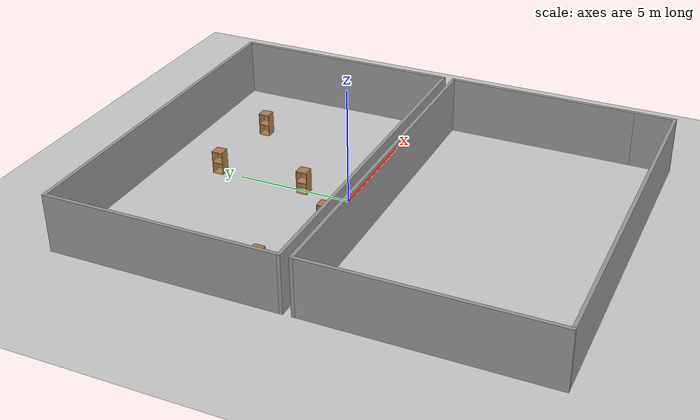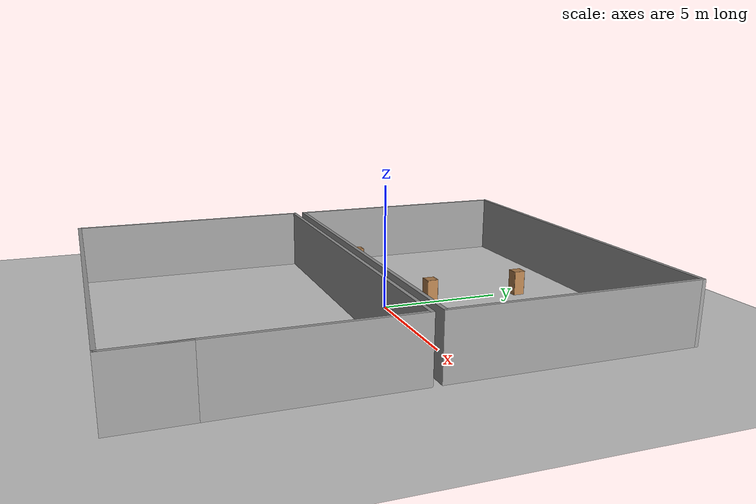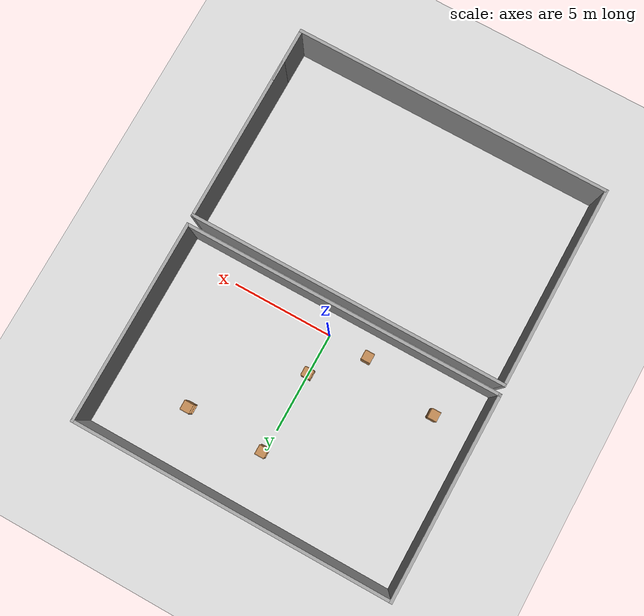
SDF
<sdf version="1.6">
 <world name="default">
  <light name="sun" type="directional">
   <pose>0 0 10 0 -0 0</pose>
   <diffuse>0.8 0.8 0.8 1</diffuse>
   <specular>0.1 0.1 0.1 1</specular>
   <attenuation>
    <range>1000</range>
    <constant>0.9</constant>
    <linear>0.01</linear>
    <quadratic>0.001</quadratic>
   </attenuation>
   <direction>-0.5 0.5 -1</direction>
  </light>
  <model name="ground_plane">
   <static>1</static>
   <link name="link">
    <collision name="collision">
     <geometry><plane><normal>0 0 1</normal><size>100 100</size></plane></geometry>
     <surface><friction><ode><mu>100</mu><mu2>50</mu2></ode></friction></surface>
    </collision>
    <visual name="visual">
     <cast_shadows>0</cast_shadows>
     <geometry><plane><normal>0 0 1</normal><size>100 100</size></plane></geometry>
     <material>
      <script><uri>file://media/materials/scripts/gazebo.material</uri><name>Gazebo/Grey</name></script>
     </material>
    </visual>
   </link>
  </model>
  <gravity>0 0 -9.8</gravity>
  <magnetic_field>6e-06 2.3e-05 -4.2e-05</magnetic_field>
  <atmosphere type="adiabatic"/>
  <physics name="default_physics" default="0" type="ode">
   <max_step_size>0.001</max_step_size>
   <real_time_factor>1</real_time_factor>
   <real_time_update_rate>1000</real_time_update_rate>
  </physics>
  <scene><ambient>0.4 0.4 0.4 1</ambient><background>0.7 0.7 0.7 1</background><shadows>1</shadows></scene>
  <spherical_coordinates>
   <surface_model>EARTH_WGS84</surface_model>
   <latitude_deg>0</latitude_deg>
   <longitude_deg>0</longitude_deg>
   <elevation>0</elevation>
   <heading_deg>0</heading_deg>
  </spherical_coordinates>
  <model name="two_rooms">
   <pose>-0.03807 -1.33544 0 0 -0 0</pose>
   <link name="Wall_14">
    <collision name="Wall_14_Collision">
     <geometry><box><size>15.75 0.15 2.5</size></box></geometry>
     <pose>0 0 1.25 0 -0 0</pose>
    </collision>
    <visual name="Wall_14_Visual">
     <pose>0 0 1.25 0 -0 0</pose>
     <geometry><box><size>15.75 0.15 2.5</size></box></geometry>
     <material>
      <script><uri>file://media/materials/scripts/gazebo.material</uri><name>Gazebo/Grey</name></script>
      <ambient>1 1 1 1</ambient>
     </material>
    </visual>
    <pose>0.008086 -0.237245 0 0 -0 0</pose>
   </link>
   <link name="Wall_15">
    <collision name="Wall_15_Collision">
     <geometry><box><size>8.25 0.15 2.5</size></box></geometry>
     <pose>0 0 1.25 0 -0 0</pose>
    </collision>
    <visual name="Wall_15_Visual">
     <pose>0 0 1.25 0 -0 0</pose>
     <geometry><box><size>8.25 0.15 2.5</size></box></geometry>
     <material>
      <script><uri>file://media/materials/scripts/gazebo.material</uri><name>Gazebo/Grey</name></script>
      <ambient>1 1 1 1</ambient>
     </material>
    </visual>
    <pose>7.80809 -4.28724 0 0 0 -1.5708</pose>
   </link>
   <link name="Wall_19">
    <collision name="Wall_19_Collision">
     <geometry><box><size>10 0.15 2.5</size></box></geometry>
     <pose>0 0 1.25 0 -0 0</pose>
    </collision>
    <visual name="Wall_19_Visual">
     <pose>0 0 1.25 0 -0 0</pose>
     <geometry><box><size>10 0.15 2.5</size></box></geometry>
     <material>
      <script><uri>file://media/materials/scripts/gazebo.material</uri><name>Gazebo/Grey</name></script>
      <ambient>1 1 1 1</ambient>
     </material>
    </visual>
    <pose>-7.80809 5.16225 0 0 -0 1.5708</pose>
   </link>
   <link name="Wall_24">
    <collision name="Wall_24_Collision">
     <geometry><box><size>15.75 0.15 2.5</size></box></geometry>
     <pose>0 0 1.25 0 -0 0</pose>
    </collision>
    <visual name="Wall_24_Visual">
     <pose>0 0 1.25 0 -0 0</pose>
     <geometry><box><size>15.75 0.15 2.5</size></box></geometry>
     <material>
      <script><uri>file://media/materials/scripts/gazebo.material</uri><name>Gazebo/Grey</name></script>
      <ambient>1 1 1 1</ambient>
     </material>
    </visual>
    <pose>-0.008085 10.0872 0 0 -0 0</pose>
   </link>
   <link name="Wall_27">
    <collision name="Wall_27_Collision">
     <geometry><box><size>10 0.15 2.5</size></box></geometry>
     <pose>0 0 1.25 0 -0 0</pose>
    </collision>
    <visual name="Wall_27_Visual">
     <pose>0 0 1.25 0 -0 0</pose>
     <geometry><box><size>10 0.15 2.5</size></box></geometry>
     <material>
      <script><uri>file://media/materials/scripts/gazebo.material</uri><name>Gazebo/Grey</name></script>
      <ambient>1 1 1 1</ambient>
     </material>
    </visual>
    <pose>-7.79191 -5.16224 0 0 0 -1.5708</pose>
   </link>
   <link name="Wall_28">
    <collision name="Wall_28_Collision">
     <geometry><box><size>15.75 0.15 2.5</size></box></geometry>
     <pose>0 0 1.25 0 -0 0</pose>
    </collision>
    <visual name="Wall_28_Visual">
     <pose>0 0 1.25 0 -0 0</pose>
     <geometry><box><size>15.75 0.15 2.5</size></box></geometry>
     <material>
      <script><uri>file://media/materials/scripts/gazebo.material</uri><name>Gazebo/Grey</name></script>
      <ambient>1 1 1 1</ambient>
     </material>
    </visual>
    <pose>0.008086 -10.0872 0 0 -0 0</pose>
   </link>
   <link name="Wall_29">
    <collision name="Wall_29_Collision">
     <geometry><box><size>2.75 0.15 2.5</size></box></geometry>
     <pose>0 0 1.25 0 -0 0</pose>
    </collision>
    <visual name="Wall_29_Visual">
     <pose>0 0 1.25 0 -0 0</pose>
     <geometry><box><size>2.75 0.15 2.5</size></box></geometry>
     <material>
      <script><uri>file://media/materials/scripts/gazebo.material</uri><name>Gazebo/Grey</name></script>
      <ambient>1 1 1 1</ambient>
     </material>
    </visual>
    <pose>7.80809 -8.78724 0 0 -0 1.5708</pose>
   </link>
   <link name="Wall_8">
    <collision name="Wall_8_Collision">
     <geometry><box><size>15.75 0.15 2.5</size></box></geometry>
     <pose>0 0 1.25 0 -0 0</pose>
    </collision>
    <visual name="Wall_8_Visual">
     <pose>0 0 1.25 0 -0 0</pose>
     <geometry><box><size>15.75 0.15 2.5</size></box></geometry>
     <material>
      <script><uri>file://media/materials/scripts/gazebo.material</uri><name>Gazebo/Grey</name></script>
      <ambient>1 1 1 1</ambient>
     </material>
    </visual>
    <pose>-0.008085 0.237244 0 0 -0 0</pose>
   </link>
   <link name="Wall_9">
    <collision name="Wall_9_Collision">
     <geometry><box><size>10 0.15 2.5</size></box></geometry>
     <pose>0 0 1.25 0 -0 0</pose>
    </collision>
    <visual name="Wall_9_Visual">
     <pose>0 0 1.25 0 -0 0</pose>
     <geometry><box><size>10 0.15 2.5</size></box></geometry>
     <material>
      <script><uri>file://media/materials/scripts/gazebo.material</uri><name>Gazebo/Grey</name></script>
      <ambient>1 1 1 1</ambient>
     </material>
    </visual>
    <pose>7.79192 5.16225 0 0 -0 1.5708</pose>
   </link>
   <static>1</static>
  </model>
  <model name="cabinet">
   <static>1</static>
   <link name="cabinet_bottom_plate">
    <inertial>
     <pose>0 0 -1 0 -0 0</pose>
     <inertia><ixx>2.05</ixx><ixy>0</ixy><ixz>0</ixz><iyy>2.05</iyy><iyz>0</iyz><izz>2.05</izz></inertia>
     <mass>25</mass>
    </inertial>
    <collision name="cabinet_bottom_plate_geom">
     <pose>0 0 0.01 0 -0 0</pose>
     <geometry><box><size>0.45 0.45 0.02</size></box></geometry>
    </collision>
    <visual name="cabinet_bottom_plate_geom_visual">
     <pose>0 0 0.01 0 -0 0</pose>
     <geometry><box><size>0.45 0.45 0.02</size></box></geometry>
     <material>
      <script><uri>file://media/materials/scripts/gazebo.material</uri><name>Gazebo/Wood</name></script>
     </material>
    </visual>
    <collision name="cabinet_bottom_plate_geom_cabinet_back_plate">
     <pose>0.235 0 0.51 0 -0 0</pose>
     <geometry><box><size>0.02 0.45 1.02</size></box></geometry>
    </collision>
    <visual name="cabinet_bottom_plate_geom_cabinet_back_plate_visual">
     <pose>0.235 0 0.51 0 -0 0</pose>
     <geometry><box><size>0.02 0.45 1.02</size></box></geometry>
     <material>
      <script><uri>file://media/materials/scripts/gazebo.material</uri><name>Gazebo/Wood</name></script>
     </material>
    </visual>
    <collision name="cabinet_bottom_plate_geom_cabinet_left_plate">
     <pose>0 0.235 0.51 0 -0 0</pose>
     <geometry><box><size>0.45 0.02 1.02</size></box></geometry>
    </collision>
    <visual name="cabinet_bottom_plate_geom_cabinet_left_plate_visual">
     <pose>0 0.235 0.51 0 -0 0</pose>
     <geometry><box><size>0.45 0.02 1.02</size></box></geometry>
     <material>
      <script><uri>file://media/materials/scripts/gazebo.material</uri><name>Gazebo/Wood</name></script>
     </material>
    </visual>
    <collision name="cabinet_bottom_plate_geom_cabinet_middle_plate">
     <pose>0 0 0.51 0 -0 0</pose>
     <geometry><box><size>0.45 0.45 0.02</size></box></geometry>
    </collision>
    <visual name="cabinet_bottom_plate_geom_cabinet_middle_plate_visual">
     <pose>0 0 0.51 0 -0 0</pose>
     <geometry><box><size>0.45 0.45 0.02</size></box></geometry>
     <material>
      <script><uri>file://media/materials/scripts/gazebo.material</uri><name>Gazebo/Wood</name></script>
     </material>
    </visual>
    <collision name="cabinet_bottom_plate_geom_cabinet_right_plate">
     <pose>0 -0.235 0.51 0 -0 0</pose>
     <geometry><box><size>0.45 0.02 1.02</size></box></geometry>
    </collision>
    <visual name="cabinet_bottom_plate_geom_cabinet_right_plate_visual">
     <pose>0 -0.235 0.51 0 -0 0</pose>
     <geometry><box><size>0.45 0.02 1.02</size></box></geometry>
     <material>
      <script><uri>file://media/materials/scripts/gazebo.material</uri><name>Gazebo/Wood</name></script>
     </material>
    </visual>
    <collision name="cabinet_bottom_plate_geom_cabinet_top_plate">
     <pose>0 0 1.01 0 -0 0</pose>
     <geometry><box><size>0.45 0.45 0.02</size></box></geometry>
    </collision>
    <visual name="cabinet_bottom_plate_geom_cabinet_top_plate_visual">
     <pose>0 0 1.01 0 -0 0</pose>
     <geometry><box><size>0.45 0.45 0.02</size></box></geometry>
     <material>
      <script><uri>file://media/materials/scripts/gazebo.material</uri><name>Gazebo/Wood</name></script>
     </material>
    </visual>
   </link>
   <pose>-5.89097 0.939873 0 0 -0 0</pose>
  </model>
  <model name="cabinet_0">
   <static>1</static>
   <link name="cabinet_bottom_plate">
    <inertial>
     <pose>0 0 -1 0 -0 0</pose>
     <inertia><ixx>2.05</ixx><ixy>0</ixy><ixz>0</ixz><iyy>2.05</iyy><iyz>0</iyz><izz>2.05</izz></inertia>
     <mass>25</mass>
    </inertial>
    <collision name="cabinet_bottom_plate_geom">
     <pose>0 0 0.01 0 -0 0</pose>
     <geometry><box><size>0.45 0.45 0.02</size></box></geometry>
    </collision>
    <visual name="cabinet_bottom_plate_geom_visual">
     <pose>0 0 0.01 0 -0 0</pose>
     <geometry><box><size>0.45 0.45 0.02</size></box></geometry>
     <material>
      <script><uri>file://media/materials/scripts/gazebo.material</uri><name>Gazebo/Wood</name></script>
     </material>
    </visual>
    <collision name="cabinet_bottom_plate_geom_cabinet_back_plate">
     <pose>0.235 0 0.51 0 -0 0</pose>
     <geometry><box><size>0.02 0.45 1.02</size></box></geometry>
    </collision>
    <visual name="cabinet_bottom_plate_geom_cabinet_back_plate_visual">
     <pose>0.235 0 0.51 0 -0 0</pose>
     <geometry><box><size>0.02 0.45 1.02</size></box></geometry>
     <material>
      <script><uri>file://media/materials/scripts/gazebo.material</uri><name>Gazebo/Wood</name></script>
     </material>
    </visual>
    <collision name="cabinet_bottom_plate_geom_cabinet_left_plate">
     <pose>0 0.235 0.51 0 -0 0</pose>
     <geometry><box><size>0.45 0.02 1.02</size></box></geometry>
    </collision>
    <visual name="cabinet_bottom_plate_geom_cabinet_left_plate_visual">
     <pose>0 0.235 0.51 0 -0 0</pose>
     <geometry><box><size>0.45 0.02 1.02</size></box></geometry>
     <material>
      <script><uri>file://media/materials/scripts/gazebo.material</uri><name>Gazebo/Wood</name></script>
     </material>
    </visual>
    <collision name="cabinet_bottom_plate_geom_cabinet_middle_plate">
     <pose>0 0 0.51 0 -0 0</pose>
     <geometry><box><size>0.45 0.45 0.02</size></box></geometry>
    </collision>
    <visual name="cabinet_bottom_plate_geom_cabinet_middle_plate_visual">
     <pose>0 0 0.51 0 -0 0</pose>
     <geometry><box><size>0.45 0.45 0.02</size></box></geometry>
     <material>
      <script><uri>file://media/materials/scripts/gazebo.material</uri><name>Gazebo/Wood</name></script>
     </material>
    </visual>
    <collision name="cabinet_bottom_plate_geom_cabinet_right_plate">
     <pose>0 -0.235 0.51 0 -0 0</pose>
     <geometry><box><size>0.45 0.02 1.02</size></box></geometry>
    </collision>
    <visual name="cabinet_bottom_plate_geom_cabinet_right_plate_visual">
     <pose>0 -0.235 0.51 0 -0 0</pose>
     <geometry><box><size>0.45 0.02 1.02</size></box></geometry>
     <material>
      <script><uri>file://media/materials/scripts/gazebo.material</uri><name>Gazebo/Wood</name></script>
     </material>
    </visual>
    <collision name="cabinet_bottom_plate_geom_cabinet_top_plate">
     <pose>0 0 1.01 0 -0 0</pose>
     <geometry><box><size>0.45 0.45 0.02</size></box></geometry>
    </collision>
    <visual name="cabinet_bottom_plate_geom_cabinet_top_plate_visual">
     <pose>0 0 1.01 0 -0 0</pose>
     <geometry><box><size>0.45 0.45 0.02</size></box></geometry>
     <material>
      <script><uri>file://media/materials/scripts/gazebo.material</uri><name>Gazebo/Wood</name></script>
     </material>
    </visual>
   </link>
   <pose>0.069768 6.06622 0 0 -0 0</pose>
  </model>
  <model name="cabinet_1">
   <static>1</static>
   <link name="cabinet_bottom_plate">
    <inertial>
     <pose>0 0 -1 0 -0 0</pose>
     <inertia><ixx>2.05</ixx><ixy>0</ixy><ixz>0</ixz><iyy>2.05</iyy><iyz>0</iyz><izz>2.05</izz></inertia>
     <mass>25</mass>
    </inertial>
    <collision name="cabinet_bottom_plate_geom">
     <pose>0 0 0.01 0 -0 0</pose>
     <geometry><box><size>0.45 0.45 0.02</size></box></geometry>
    </collision>
    <visual name="cabinet_bottom_plate_geom_visual">
     <pose>0 0 0.01 0 -0 0</pose>
     <geometry><box><size>0.45 0.45 0.02</size></box></geometry>
     <material>
      <script><uri>file://media/materials/scripts/gazebo.material</uri><name>Gazebo/Wood</name></script>
     </material>
    </visual>
    <collision name="cabinet_bottom_plate_geom_cabinet_back_plate">
     <pose>0.235 0 0.51 0 -0 0</pose>
     <geometry><box><size>0.02 0.45 1.02</size></box></geometry>
    </collision>
    <visual name="cabinet_bottom_plate_geom_cabinet_back_plate_visual">
     <pose>0.235 0 0.51 0 -0 0</pose>
     <geometry><box><size>0.02 0.45 1.02</size></box></geometry>
     <material>
      <script><uri>file://media/materials/scripts/gazebo.material</uri><name>Gazebo/Wood</name></script>
     </material>
    </visual>
    <collision name="cabinet_bottom_plate_geom_cabinet_left_plate">
     <pose>0 0.235 0.51 0 -0 0</pose>
     <geometry><box><size>0.45 0.02 1.02</size></box></geometry>
    </collision>
    <visual name="cabinet_bottom_plate_geom_cabinet_left_plate_visual">
     <pose>0 0.235 0.51 0 -0 0</pose>
     <geometry><box><size>0.45 0.02 1.02</size></box></geometry>
     <material>
      <script><uri>file://media/materials/scripts/gazebo.material</uri><name>Gazebo/Wood</name></script>
     </material>
    </visual>
    <collision name="cabinet_bottom_plate_geom_cabinet_middle_plate">
     <pose>0 0 0.51 0 -0 0</pose>
     <geometry><box><size>0.45 0.45 0.02</size></box></geometry>
    </collision>
    <visual name="cabinet_bottom_plate_geom_cabinet_middle_plate_visual">
     <pose>0 0 0.51 0 -0 0</pose>
     <geometry><box><size>0.45 0.45 0.02</size></box></geometry>
     <material>
      <script><uri>file://media/materials/scripts/gazebo.material</uri><name>Gazebo/Wood</name></script>
     </material>
    </visual>
    <collision name="cabinet_bottom_plate_geom_cabinet_right_plate">
     <pose>0 -0.235 0.51 0 -0 0</pose>
     <geometry><box><size>0.45 0.02 1.02</size></box></geometry>
    </collision>
    <visual name="cabinet_bottom_plate_geom_cabinet_right_plate_visual">
     <pose>0 -0.235 0.51 0 -0 0</pose>
     <geometry><box><size>0.45 0.02 1.02</size></box></geometry>
     <material>
      <script><uri>file://media/materials/scripts/gazebo.material</uri><name>Gazebo/Wood</name></script>
     </material>
    </visual>
    <collision name="cabinet_bottom_plate_geom_cabinet_top_plate">
     <pose>0 0 1.01 0 -0 0</pose>
     <geometry><box><size>0.45 0.45 0.02</size></box></geometry>
    </collision>
    <visual name="cabinet_bottom_plate_geom_cabinet_top_plate_visual">
     <pose>0 0 1.01 0 -0 0</pose>
     <geometry><box><size>0.45 0.45 0.02</size></box></geometry>
     <material>
      <script><uri>file://media/materials/scripts/gazebo.material</uri><name>Gazebo/Wood</name></script>
     </material>
    </visual>
   </link>
   <pose>-2.03563 0.07627 0 0 -0 0</pose>
  </model>
  <model name="cabinet_2">
   <static>1</static>
   <link name="cabinet_bottom_plate">
    <inertial>
     <pose>0 0 -1 0 -0 0</pose>
     <inertia><ixx>2.05</ixx><ixy>0</ixy><ixz>0</ixz><iyy>2.05</iyy><iyz>0</iyz><izz>2.05</izz></inertia>
     <mass>25</mass>
    </inertial>
    <collision name="cabinet_bottom_plate_geom">
     <pose>0 0 0.01 0 -0 0</pose>
     <geometry><box><size>0.45 0.45 0.02</size></box></geometry>
    </collision>
    <visual name="cabinet_bottom_plate_geom_visual">
     <pose>0 0 0.01 0 -0 0</pose>
     <geometry><box><size>0.45 0.45 0.02</size></box></geometry>
     <material>
      <script><uri>file://media/materials/scripts/gazebo.material</uri><name>Gazebo/Wood</name></script>
     </material>
    </visual>
    <collision name="cabinet_bottom_plate_geom_cabinet_back_plate">
     <pose>0.235 0 0.51 0 -0 0</pose>
     <geometry><box><size>0.02 0.45 1.02</size></box></geometry>
    </collision>
    <visual name="cabinet_bottom_plate_geom_cabinet_back_plate_visual">
     <pose>0.235 0 0.51 0 -0 0</pose>
     <geometry><box><size>0.02 0.45 1.02</size></box></geometry>
     <material>
      <script><uri>file://media/materials/scripts/gazebo.material</uri><name>Gazebo/Wood</name></script>
     </material>
    </visual>
    <collision name="cabinet_bottom_plate_geom_cabinet_left_plate">
     <pose>0 0.235 0.51 0 -0 0</pose>
     <geometry><box><size>0.45 0.02 1.02</size></box></geometry>
    </collision>
    <visual name="cabinet_bottom_plate_geom_cabinet_left_plate_visual">
     <pose>0 0.235 0.51 0 -0 0</pose>
     <geometry><box><size>0.45 0.02 1.02</size></box></geometry>
     <material>
      <script><uri>file://media/materials/scripts/gazebo.material</uri><name>Gazebo/Wood</name></script>
     </material>
    </visual>
    <collision name="cabinet_bottom_plate_geom_cabinet_middle_plate">
     <pose>0 0 0.51 0 -0 0</pose>
     <geometry><box><size>0.45 0.45 0.02</size></box></geometry>
    </collision>
    <visual name="cabinet_bottom_plate_geom_cabinet_middle_plate_visual">
     <pose>0 0 0.51 0 -0 0</pose>
     <geometry><box><size>0.45 0.45 0.02</size></box></geometry>
     <material>
      <script><uri>file://media/materials/scripts/gazebo.material</uri><name>Gazebo/Wood</name></script>
     </material>
    </visual>
    <collision name="cabinet_bottom_plate_geom_cabinet_right_plate">
     <pose>0 -0.235 0.51 0 -0 0</pose>
     <geometry><box><size>0.45 0.02 1.02</size></box></geometry>
    </collision>
    <visual name="cabinet_bottom_plate_geom_cabinet_right_plate_visual">
     <pose>0 -0.235 0.51 0 -0 0</pose>
     <geometry><box><size>0.45 0.02 1.02</size></box></geometry>
     <material>
      <script><uri>file://media/materials/scripts/gazebo.material</uri><name>Gazebo/Wood</name></script>
     </material>
    </visual>
    <collision name="cabinet_bottom_plate_geom_cabinet_top_plate">
     <pose>0 0 1.01 0 -0 0</pose>
     <geometry><box><size>0.45 0.45 0.02</size></box></geometry>
    </collision>
    <visual name="cabinet_bottom_plate_geom_cabinet_top_plate_visual">
     <pose>0 0 1.01 0 -0 0</pose>
     <geometry><box><size>0.45 0.45 0.02</size></box></geometry>
     <material>
      <script><uri>file://media/materials/scripts/gazebo.material</uri><name>Gazebo/Wood</name></script>
     </material>
    </visual>
   </link>
   <pose>3.97908 5.96443 0 0 -0 0</pose>
  </model>
  <model name="cabinet_3">
   <static>1</static>
   <link name="cabinet_bottom_plate">
    <inertial>
     <pose>0 0 -1 0 -0 0</pose>
     <inertia><ixx>2.05</ixx><ixy>0</ixy><ixz>0</ixz><iyy>2.05</iyy><iyz>0</iyz><izz>2.05</izz></inertia>
     <mass>25</mass>
    </inertial>
    <collision name="cabinet_bottom_plate_geom">
     <pose>0 0 0.01 0 -0 0</pose>
     <geometry><box><size>0.45 0.45 0.02</size></box></geometry>
    </collision>
    <visual name="cabinet_bottom_plate_geom_visual">
     <pose>0 0 0.01 0 -0 0</pose>
     <geometry><box><size>0.45 0.45 0.02</size></box></geometry>
     <material>
      <script><uri>file://media/materials/scripts/gazebo.material</uri><name>Gazebo/Wood</name></script>
     </material>
    </visual>
    <collision name="cabinet_bottom_plate_geom_cabinet_back_plate">
     <pose>0.235 0 0.51 0 -0 0</pose>
     <geometry><box><size>0.02 0.45 1.02</size></box></geometry>
    </collision>
    <visual name="cabinet_bottom_plate_geom_cabinet_back_plate_visual">
     <pose>0.235 0 0.51 0 -0 0</pose>
     <geometry><box><size>0.02 0.45 1.02</size></box></geometry>
     <material>
      <script><uri>file://media/materials/scripts/gazebo.material</uri><name>Gazebo/Wood</name></script>
     </material>
    </visual>
    <collision name="cabinet_bottom_plate_geom_cabinet_left_plate">
     <pose>0 0.235 0.51 0 -0 0</pose>
     <geometry><box><size>0.45 0.02 1.02</size></box></geometry>
    </collision>
    <visual name="cabinet_bottom_plate_geom_cabinet_left_plate_visual">
     <pose>0 0.235 0.51 0 -0 0</pose>
     <geometry><box><size>0.45 0.02 1.02</size></box></geometry>
     <material>
      <script><uri>file://media/materials/scripts/gazebo.material</uri><name>Gazebo/Wood</name></script>
     </material>
    </visual>
    <collision name="cabinet_bottom_plate_geom_cabinet_middle_plate">
     <pose>0 0 0.51 0 -0 0</pose>
     <geometry><box><size>0.45 0.45 0.02</size></box></geometry>
    </collision>
    <visual name="cabinet_bottom_plate_geom_cabinet_middle_plate_visual">
     <pose>0 0 0.51 0 -0 0</pose>
     <geometry><box><size>0.45 0.45 0.02</size></box></geometry>
     <material>
      <script><uri>file://media/materials/scripts/gazebo.material</uri><name>Gazebo/Wood</name></script>
     </material>
    </visual>
    <collision name="cabinet_bottom_plate_geom_cabinet_right_plate">
     <pose>0 -0.235 0.51 0 -0 0</pose>
     <geometry><box><size>0.45 0.02 1.02</size></box></geometry>
    </collision>
    <visual name="cabinet_bottom_plate_geom_cabinet_right_plate_visual">
     <pose>0 -0.235 0.51 0 -0 0</pose>
     <geometry><box><size>0.45 0.02 1.02</size></box></geometry>
     <material>
      <script><uri>file://media/materials/scripts/gazebo.material</uri><name>Gazebo/Wood</name></script>
     </material>
    </visual>
    <collision name="cabinet_bottom_plate_geom_cabinet_top_plate">
     <pose>0 0 1.01 0 -0 0</pose>
     <geometry><box><size>0.45 0.45 0.02</size></box></geometry>
    </collision>
    <visual name="cabinet_bottom_plate_geom_cabinet_top_plate_visual">
     <pose>0 0 1.01 0 -0 0</pose>
     <geometry><box><size>0.45 0.45 0.02</size></box></geometry>
     <material>
      <script><uri>file://media/materials/scripts/gazebo.material</uri><name>Gazebo/Wood</name></script>
     </material>
    </visual>
   </link>
   <pose>-0.005406 2.03095 0 0 -0 0</pose>
  </model>
 </world>
</sdf>
